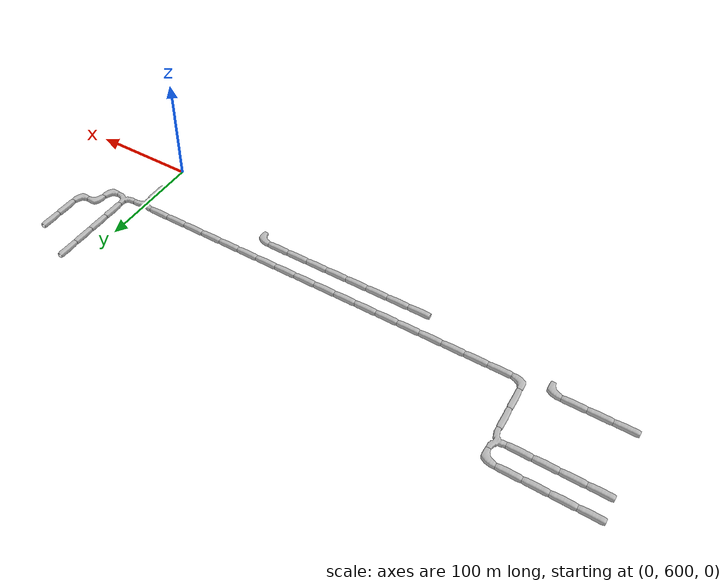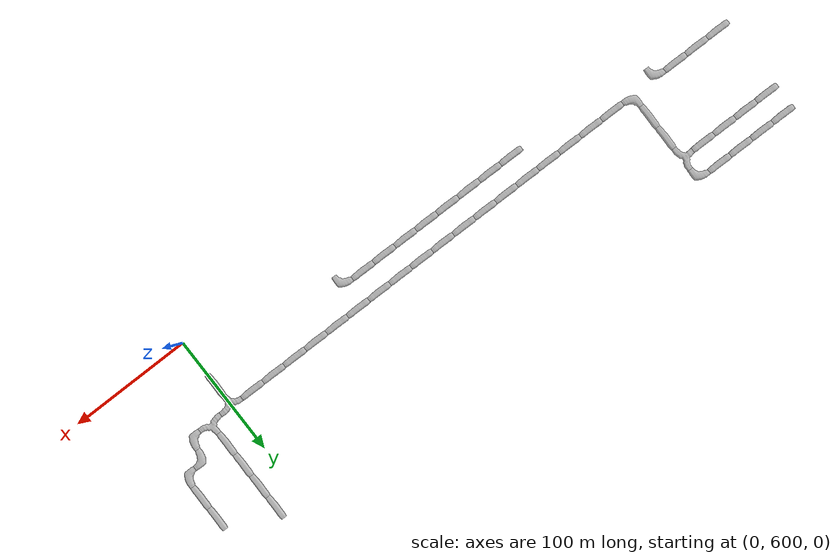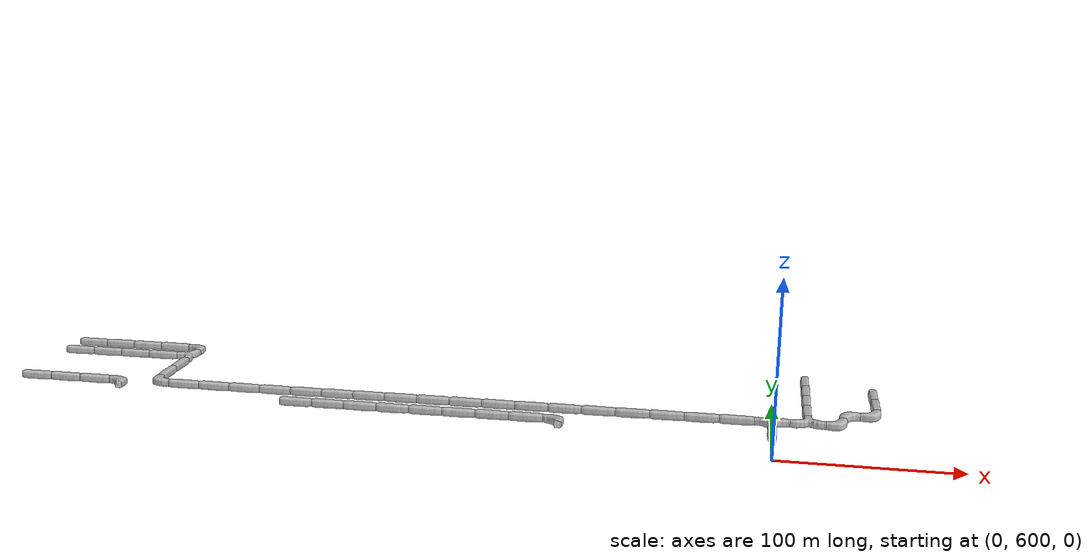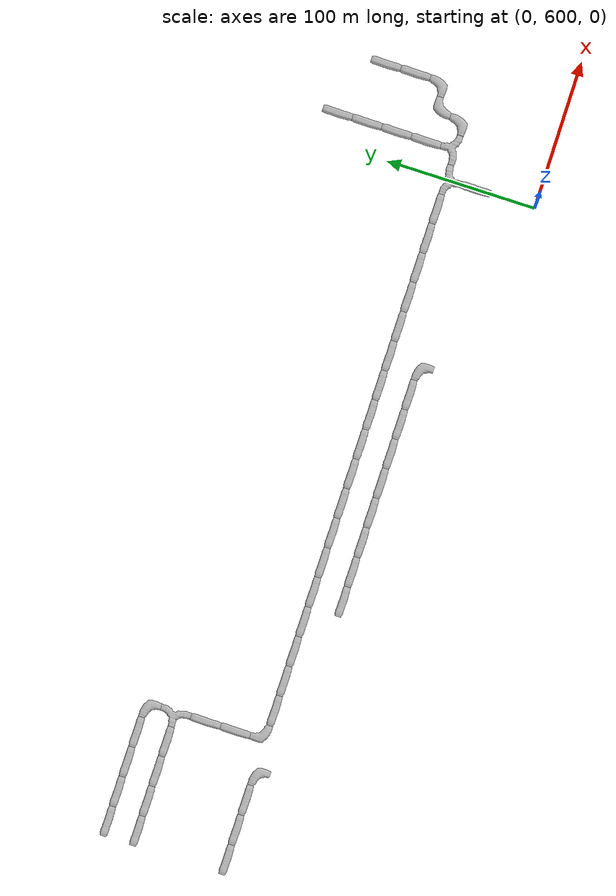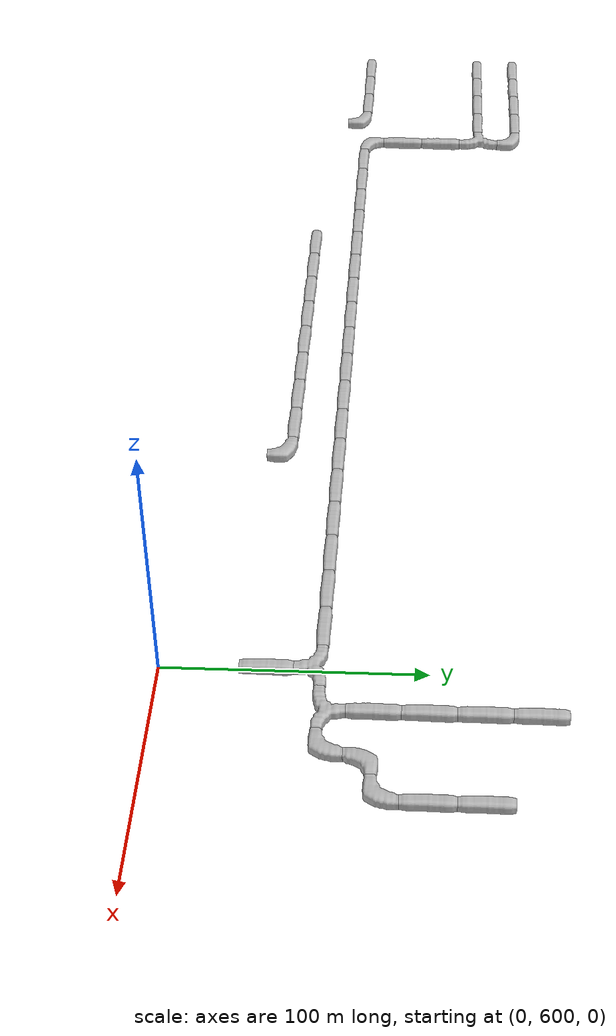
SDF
<sdf version="1.6">
 <world name="cave_32000">
  <include>
   <static>true</static>
   <name>cave_-6_32</name>
   <pose>-120 640 0 0 0 3.141592653589793</pose>
   <uri>model://cave_L_20m</uri>
  </include>
  <include>
   <static>true</static>
   <name>cave_-7_32</name>
   <pose>-140 640 0 0 0 1.5707963267948966</pose>
   <uri>model://cave_straight_20m</uri>
  </include>
  <include>
   <static>true</static>
   <name>cave_-8_32</name>
   <pose>-160 640 0 0 0 1.5707963267948966</pose>
   <uri>model://cave_straight_20m</uri>
  </include>
  <include>
   <static>true</static>
   <name>cave_-9_32</name>
   <pose>-180 640 0 0 0 1.5707963267948966</pose>
   <uri>model://cave_straight_20m</uri>
  </include>
  <include>
   <static>true</static>
   <name>cave_-10_32</name>
   <pose>-200 640 0 0 0 1.5707963267948966</pose>
   <uri>model://cave_straight_20m</uri>
  </include>
  <include>
   <static>true</static>
   <name>cave_-11_32</name>
   <pose>-220 640 0 0 0 1.5707963267948966</pose>
   <uri>model://cave_straight_20m</uri>
  </include>
  <include>
   <static>true</static>
   <name>cave_-12_32</name>
   <pose>-240 640 0 0 0 1.5707963267948966</pose>
   <uri>model://cave_straight_20m</uri>
  </include>
  <include>
   <static>true</static>
   <name>cave_-13_32</name>
   <pose>-260 640 0 0 0 1.5707963267948966</pose>
   <uri>model://cave_straight_20m</uri>
  </include>
  <include>
   <static>true</static>
   <name>cave_-14_32</name>
   <pose>-280 640 0 0 0 1.5707963267948966</pose>
   <uri>model://cave_straight_20m</uri>
  </include>
  <include>
   <static>true</static>
   <name>cave_-20_33</name>
   <pose>-400 660 0 0 0 3.141592653589793</pose>
   <uri>model://cave_L_20m</uri>
  </include>
  <include>
   <static>true</static>
   <name>cave_-21_33</name>
   <pose>-420 660 0 0 0 1.5707963267948966</pose>
   <uri>model://cave_straight_20m</uri>
  </include>
  <include>
   <static>true</static>
   <name>cave_-22_33</name>
   <pose>-440 660 0 0 0 1.5707963267948966</pose>
   <uri>model://cave_straight_20m</uri>
  </include>
  <include>
   <static>true</static>
   <name>cave_-23_33</name>
   <pose>-460 660 0 0 0 1.5707963267948966</pose>
   <uri>model://cave_straight_20m</uri>
  </include>
  <include>
   <static>true</static>
   <name>cave_-23_37</name>
   <pose>-460 740 0 0 0 1.5707963267948966</pose>
   <uri>model://cave_straight_20m</uri>
  </include>
  <include>
   <static>true</static>
   <name>cave_-22_37</name>
   <pose>-440 740 0 0 0 1.5707963267948966</pose>
   <uri>model://cave_straight_20m</uri>
  </include>
  <include>
   <static>true</static>
   <name>cave_-21_37</name>
   <pose>-420 740 0 0 0 1.5707963267948966</pose>
   <uri>model://cave_straight_20m</uri>
  </include>
  <include>
   <static>true</static>
   <name>cave_-20_37</name>
   <pose>-400 740 0 0 0 1.5707963267948966</pose>
   <uri>model://cave_straight_20m</uri>
  </include>
  <include>
   <static>true</static>
   <name>cave_-19_37</name>
   <pose>-380 740 0 0 0 3.141592653589793</pose>
   <uri>model://cave_L_20m</uri>
  </include>
  <include>
   <static>true</static>
   <name>cave_-19_36</name>
   <pose>-380 720 0 0 0 1.5707963267948966</pose>
   <uri>model://cave_3way_20m</uri>
  </include>
  <include>
   <static>true</static>
   <name>cave_-19_35</name>
   <pose>-380 700 0 0 0 0.0</pose>
   <uri>model://cave_straight_20m</uri>
  </include>
  <include>
   <static>true</static>
   <name>cave_-19_34</name>
   <pose>-380 680 0 0 0 0.0</pose>
   <uri>model://cave_straight_20m</uri>
  </include>
  <include>
   <static>true</static>
   <name>cave_-19_33</name>
   <pose>-380 660 0 0 0 0.0</pose>
   <uri>model://cave_L_20m</uri>
  </include>
  <include>
   <static>true</static>
   <name>cave_-18_33</name>
   <pose>-360 660 0 0 0 1.5707963267948966</pose>
   <uri>model://cave_straight_20m</uri>
  </include>
  <include>
   <static>true</static>
   <name>cave_-17_33</name>
   <pose>-340 660 0 0 0 1.5707963267948966</pose>
   <uri>model://cave_straight_20m</uri>
  </include>
  <include>
   <static>true</static>
   <name>cave_-16_33</name>
   <pose>-320 660 0 0 0 1.5707963267948966</pose>
   <uri>model://cave_straight_20m</uri>
  </include>
  <include>
   <static>true</static>
   <name>cave_-15_33</name>
   <pose>-300 660 0 0 0 1.5707963267948966</pose>
   <uri>model://cave_straight_20m</uri>
  </include>
  <include>
   <static>true</static>
   <name>cave_-14_33</name>
   <pose>-280 660 0 0 0 1.5707963267948966</pose>
   <uri>model://cave_straight_20m</uri>
  </include>
  <include>
   <static>true</static>
   <name>cave_-13_33</name>
   <pose>-260 660 0 0 0 1.5707963267948966</pose>
   <uri>model://cave_straight_20m</uri>
  </include>
  <include>
   <static>true</static>
   <name>cave_-12_33</name>
   <pose>-240 660 0 0 0 1.5707963267948966</pose>
   <uri>model://cave_straight_20m</uri>
  </include>
  <include>
   <static>true</static>
   <name>cave_-11_33</name>
   <pose>-220 660 0 0 0 1.5707963267948966</pose>
   <uri>model://cave_straight_20m</uri>
  </include>
  <include>
   <static>true</static>
   <name>cave_-10_33</name>
   <pose>-200 660 0 0 0 1.5707963267948966</pose>
   <uri>model://cave_straight_20m</uri>
  </include>
  <include>
   <static>true</static>
   <name>cave_-9_33</name>
   <pose>-180 660 0 0 0 1.5707963267948966</pose>
   <uri>model://cave_straight_20m</uri>
  </include>
  <include>
   <static>true</static>
   <name>cave_-8_33</name>
   <pose>-160 660 0 0 0 1.5707963267948966</pose>
   <uri>model://cave_straight_20m</uri>
  </include>
  <include>
   <static>true</static>
   <name>cave_-7_33</name>
   <pose>-140 660 0 0 0 1.5707963267948966</pose>
   <uri>model://cave_straight_20m</uri>
  </include>
  <include>
   <static>true</static>
   <name>cave_-6_33</name>
   <pose>-120 660 0 0 0 1.5707963267948966</pose>
   <uri>model://cave_straight_20m</uri>
  </include>
  <include>
   <static>true</static>
   <name>cave_-5_33</name>
   <pose>-100 660 0 0 0 1.5707963267948966</pose>
   <uri>model://cave_straight_20m</uri>
  </include>
  <include>
   <static>true</static>
   <name>cave_-4_33</name>
   <pose>-80 660 0 0 0 1.5707963267948966</pose>
   <uri>model://cave_straight_20m</uri>
  </include>
  <include>
   <static>true</static>
   <name>cave_-3_33</name>
   <pose>-60 660 0 0 0 1.5707963267948966</pose>
   <uri>model://cave_straight_20m</uri>
  </include>
  <include>
   <static>true</static>
   <name>cave_-2_33</name>
   <pose>-40 660 0 0 0 1.5707963267948966</pose>
   <uri>model://cave_straight_20m</uri>
  </include>
  <include>
   <static>true</static>
   <name>cave_-1_33</name>
   <pose>-20 660 0 0 0 1.5707963267948966</pose>
   <uri>model://cave_straight_20m</uri>
  </include>
  <include>
   <static>true</static>
   <name>cave_0_33</name>
   <pose>0 660 0 0 0 3.141592653589793</pose>
   <uri>model://cave_3way_20m</uri>
  </include>
  <include>
   <static>true</static>
   <name>cave_1_33</name>
   <pose>20 660 0 0 0 0.0</pose>
   <uri>model://cave_3way_20m</uri>
  </include>
  <include>
   <static>true</static>
   <name>cave_2_33</name>
   <pose>40 660 0 0 0 1.5707963267948966</pose>
   <uri>model://cave_L_20m</uri>
  </include>
  <include>
   <static>true</static>
   <name>cave_2_34</name>
   <pose>40 680 0 0 0 -1.5707963267948966</pose>
   <uri>model://cave_L_20m</uri>
  </include>
  <include>
   <static>true</static>
   <name>cave_3_34</name>
   <pose>60 680 0 0 0 1.5707963267948966</pose>
   <uri>model://cave_L_20m</uri>
  </include>
  <include>
   <static>true</static>
   <name>cave_3_35</name>
   <pose>60 700 0 0 0 0.0</pose>
   <uri>model://cave_straight_20m</uri>
  </include>
  <include>
   <static>true</static>
   <name>cave_3_36</name>
   <pose>60 720 0 0 0 0.0</pose>
   <uri>model://cave_straight_20m</uri>
  </include>
  <include>
   <static>true</static>
   <name>cave_1_34</name>
   <pose>20 680 0 0 0 0.0</pose>
   <uri>model://cave_straight_20m</uri>
  </include>
  <include>
   <static>true</static>
   <name>cave_1_35</name>
   <pose>20 700 0 0 0 0.0</pose>
   <uri>model://cave_straight_20m</uri>
  </include>
  <include>
   <static>true</static>
   <name>cave_0_32</name>
   <pose>0 640 0 0 0 0.0</pose>
   <uri>model://cave_straight_20m</uri>
  </include>
  <include>
   <static>true</static>
   <name>cave_-20_36</name>
   <pose>-400 720 0 0 0 1.5707963267948966</pose>
   <uri>model://cave_straight_20m</uri>
  </include>
  <include>
   <static>true</static>
   <name>cave_-21_36</name>
   <pose>-420 720 0 0 0 1.5707963267948966</pose>
   <uri>model://cave_straight_20m</uri>
  </include>
  <include>
   <static>true</static>
   <name>cave_-22_36</name>
   <pose>-440 720 0 0 0 1.5707963267948966</pose>
   <uri>model://cave_straight_20m</uri>
  </include>
  <include>
   <static>true</static>
   <name>cave_-23_36</name>
   <pose>-460 720 0 0 0 1.5707963267948966</pose>
   <uri>model://cave_straight_20m</uri>
  </include>
  <include>
   <static>true</static>
   <name>cave_1_37</name>
   <pose>20 740 0 0 0 0.0</pose>
   <uri>model://cave_straight_20m</uri>
  </include>
  <include>
   <static>true</static>
   <name>cave_1_36</name>
   <pose>20 720 0 0 0 0.0</pose>
   <uri>model://cave_straight_20m</uri>
  </include>
 </world>
</sdf>
